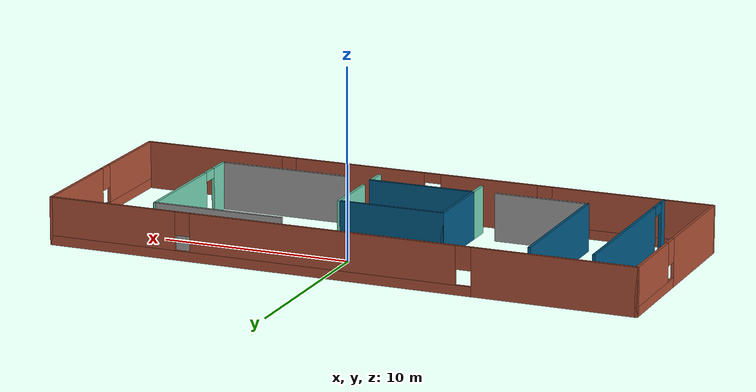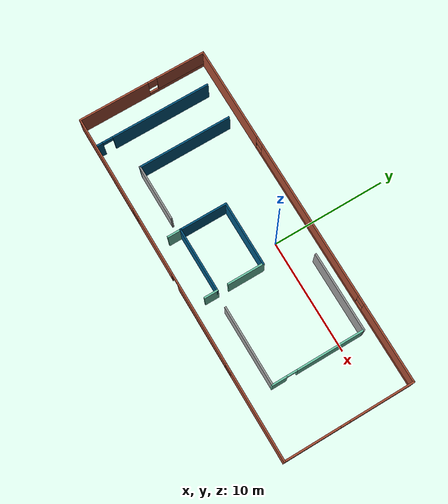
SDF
<?xml version='1.0'?>
<sdf version='1.6'>
  <model name='building'>
    <pose frame=''>-0.660301 -2.71886 0 0 -0 0</pose>
    <link name='Wall_11'>
      <pose frame=''>0 5.675 0 0 -0 0</pose>
      <visual name='Wall_11_Visual_0'>
        <pose frame=''>-11.3538 0 1.25 0 -0 0</pose>
        <geometry>
          <box>
            <size>8.54246 0.15 2.5</size>
          </box>
        </geometry>
        <material>
          <script>
            <uri>file://media/materials/scripts/gazebo.material</uri>
            <name>Gazebo/Bricks</name>
          </script>
          <ambient>1 1 1 1</ambient>
        </material>
        <meta>
          <layer>0</layer>
        </meta>
      </visual>
      <collision name='Wall_11_Collision_0'>
        <geometry>
          <box>
            <size>8.54246 0.15 2.5</size>
          </box>
        </geometry>
        <pose frame=''>-11.3538 0 1.25 0 -0 0</pose>
      </collision>
      <visual name='Wall_11_Visual_1'>
        <pose frame=''>4.27123 0 0.25 0 -0 0</pose>
        <geometry>
          <box>
            <size>22.7075 0.15 0.5</size>
          </box>
        </geometry>
        <material>
          <script>
            <uri>file://media/materials/scripts/gazebo.material</uri>
            <name>Gazebo/Bricks</name>
          </script>
          <ambient>1 1 1 1</ambient>
        </material>
        <meta>
          <layer>0</layer>
        </meta>
      </visual>
      <collision name='Wall_11_Collision_1'>
        <geometry>
          <box>
            <size>22.7075 0.15 0.5</size>
          </box>
        </geometry>
        <pose frame=''>4.27123 0 0.25 0 -0 0</pose>
      </collision>
      <visual name='Wall_11_Visual_2'>
        <pose frame=''>0.803208 0 1.5 0 -0 0</pose>
        <geometry>
          <box>
            <size>14.1715 0.15 2</size>
          </box>
        </geometry>
        <material>
          <script>
            <uri>file://media/materials/scripts/gazebo.material</uri>
            <name>Gazebo/Bricks</name>
          </script>
          <ambient>1 1 1 1</ambient>
        </material>
        <meta>
          <layer>0</layer>
        </meta>
      </visual>
      <collision name='Wall_11_Collision_2'>
        <geometry>
          <box>
            <size>14.1715 0.15 2</size>
          </box>
        </geometry>
        <pose frame=''>0.803208 0 1.5 0 -0 0</pose>
      </collision>
      <visual name='Wall_11_Visual_3'>
        <pose frame=''>12.157 0 1.5 0 -0 0</pose>
        <geometry>
          <box>
            <size>6.93605 0.15 2</size>
          </box>
        </geometry>
        <material>
          <script>
            <uri>file://media/materials/scripts/gazebo.material</uri>
            <name>Gazebo/Bricks</name>
          </script>
          <ambient>1 1 1 1</ambient>
        </material>
        <meta>
          <layer>0</layer>
        </meta>
      </visual>
      <collision name='Wall_11_Collision_3'>
        <geometry>
          <box>
            <size>6.93605 0.15 2</size>
          </box>
        </geometry>
        <pose frame=''>12.157 0 1.5 0 -0 0</pose>
      </collision>
      <visual name='Wall_11_Visual_4'>
        <pose frame=''>-6.68254 0 1.9 0 -0 0</pose>
        <geometry>
          <box>
            <size>0.8 0.15 1.2</size>
          </box>
        </geometry>
        <material>
          <script>
            <uri>file://media/materials/scripts/gazebo.material</uri>
            <name>Gazebo/Bricks</name>
          </script>
          <ambient>1 1 1 1</ambient>
        </material>
        <meta>
          <layer>0</layer>
        </meta>
      </visual>
      <collision name='Wall_11_Collision_4'>
        <geometry>
          <box>
            <size>0.8 0.15 1.2</size>
          </box>
        </geometry>
        <pose frame=''>-6.68254 0 1.9 0 -0 0</pose>
      </collision>
      <visual name='Wall_11_Visual_5'>
        <pose frame=''>8.28895 0 1.9 0 -0 0</pose>
        <geometry>
          <box>
            <size>0.8 0.15 1.2</size>
          </box>
        </geometry>
        <material>
          <script>
            <uri>file://media/materials/scripts/gazebo.material</uri>
            <name>Gazebo/Bricks</name>
          </script>
          <ambient>1 1 1 1</ambient>
        </material>
        <meta>
          <layer>0</layer>
        </meta>
      </visual>
      <collision name='Wall_11_Collision_5'>
        <geometry>
          <box>
            <size>0.8 0.15 1.2</size>
          </box>
        </geometry>
        <pose frame=''>8.28895 0 1.9 0 -0 0</pose>
      </collision>
    </link>
    <link name='Wall_12'>
      <pose frame=''>15.55 0 0 0 0 -1.5708</pose>
      <visual name='Wall_12_Visual_0'>
        <pose frame=''>-2.88672 0 1.25 0 -0 0</pose>
        <geometry>
          <box>
            <size>5.72656 0.15 2.5</size>
          </box>
        </geometry>
        <material>
          <script>
            <uri>file://media/materials/scripts/gazebo.material</uri>
            <name>Gazebo/Bricks</name>
          </script>
          <ambient>1 1 1 1</ambient>
        </material>
        <meta>
          <layer>0</layer>
        </meta>
      </visual>
      <collision name='Wall_12_Collision_0'>
        <geometry>
          <box>
            <size>5.72656 0.15 2.5</size>
          </box>
        </geometry>
        <pose frame=''>-2.88672 0 1.25 0 -0 0</pose>
      </collision>
      <visual name='Wall_12_Visual_1'>
        <pose frame=''>2.86328 0 0.25 0 -0 0</pose>
        <geometry>
          <box>
            <size>5.77344 0.15 0.5</size>
          </box>
        </geometry>
        <material>
          <script>
            <uri>file://media/materials/scripts/gazebo.material</uri>
            <name>Gazebo/Bricks</name>
          </script>
          <ambient>1 1 1 1</ambient>
        </material>
        <meta>
          <layer>0</layer>
        </meta>
      </visual>
      <collision name='Wall_12_Collision_1'>
        <geometry>
          <box>
            <size>5.77344 0.15 0.5</size>
          </box>
        </geometry>
        <pose frame=''>2.86328 0 0.25 0 -0 0</pose>
      </collision>
      <visual name='Wall_12_Visual_2'>
        <pose frame=''>3.26328 0 1.5 0 -0 0</pose>
        <geometry>
          <box>
            <size>4.97344 0.15 2</size>
          </box>
        </geometry>
        <material>
          <script>
            <uri>file://media/materials/scripts/gazebo.material</uri>
            <name>Gazebo/Bricks</name>
          </script>
          <ambient>1 1 1 1</ambient>
        </material>
        <meta>
          <layer>0</layer>
        </meta>
      </visual>
      <collision name='Wall_12_Collision_2'>
        <geometry>
          <box>
            <size>4.97344 0.15 2</size>
          </box>
        </geometry>
        <pose frame=''>3.26328 0 1.5 0 -0 0</pose>
      </collision>
      <visual name='Wall_12_Visual_3'>
        <pose frame=''>0.376562 0 1.9 0 -0 0</pose>
        <geometry>
          <box>
            <size>0.8 0.15 1.2</size>
          </box>
        </geometry>
        <material>
          <script>
            <uri>file://media/materials/scripts/gazebo.material</uri>
            <name>Gazebo/Bricks</name>
          </script>
          <ambient>1 1 1 1</ambient>
        </material>
        <meta>
          <layer>0</layer>
        </meta>
      </visual>
      <collision name='Wall_12_Collision_3'>
        <geometry>
          <box>
            <size>0.8 0.15 1.2</size>
          </box>
        </geometry>
        <pose frame=''>0.376562 0 1.9 0 -0 0</pose>
      </collision>
    </link>
    <link name='Wall_13'>
      <pose frame=''>0 -5.675 0 0 -0 3.14159</pose>
      <visual name='Wall_13_Visual_0'>
        <pose frame=''>-11.7722 0 1.25 0 -0 0</pose>
        <geometry>
          <box>
            <size>7.70561 0.15 2.5</size>
          </box>
        </geometry>
        <material>
          <script>
            <uri>file://media/materials/scripts/gazebo.material</uri>
            <name>Gazebo/Bricks</name>
          </script>
          <ambient>1 1 1 1</ambient>
        </material>
        <meta>
          <layer>0</layer>
        </meta>
      </visual>
      <collision name='Wall_13_Collision_0'>
        <geometry>
          <box>
            <size>7.70561 0.15 2.5</size>
          </box>
        </geometry>
        <pose frame=''>-11.7722 0 1.25 0 -0 0</pose>
      </collision>
      <visual name='Wall_13_Visual_1'>
        <pose frame=''>3.57682 0 1.25 0 -0 0</pose>
        <geometry>
          <box>
            <size>5.27152 0.15 2.5</size>
          </box>
        </geometry>
        <material>
          <script>
            <uri>file://media/materials/scripts/gazebo.material</uri>
            <name>Gazebo/Bricks</name>
          </script>
          <ambient>1 1 1 1</ambient>
        </material>
        <meta>
          <layer>0</layer>
        </meta>
      </visual>
      <collision name='Wall_13_Collision_1'>
        <geometry>
          <box>
            <size>5.27152 0.15 2.5</size>
          </box>
        </geometry>
        <pose frame=''>3.57682 0 1.25 0 -0 0</pose>
      </collision>
      <visual name='Wall_13_Visual_2'>
        <pose frame=''>-3.93917 0 0.25 0 -0 0</pose>
        <geometry>
          <box>
            <size>7.96045 0.15 0.5</size>
          </box>
        </geometry>
        <material>
          <script>
            <uri>file://media/materials/scripts/gazebo.material</uri>
            <name>Gazebo/Bricks</name>
          </script>
          <ambient>1 1 1 1</ambient>
        </material>
        <meta>
          <layer>0</layer>
        </meta>
      </visual>
      <collision name='Wall_13_Collision_2'>
        <geometry>
          <box>
            <size>7.96045 0.15 0.5</size>
          </box>
        </geometry>
        <pose frame=''>-3.93917 0 0.25 0 -0 0</pose>
      </collision>
      <visual name='Wall_13_Visual_3'>
        <pose frame=''>10.9188 0 0.25 0 -0 0</pose>
        <geometry>
          <box>
            <size>9.41242 0.15 0.5</size>
          </box>
        </geometry>
        <material>
          <script>
            <uri>file://media/materials/scripts/gazebo.material</uri>
            <name>Gazebo/Bricks</name>
          </script>
          <ambient>1 1 1 1</ambient>
        </material>
        <meta>
          <layer>0</layer>
        </meta>
      </visual>
      <collision name='Wall_13_Collision_3'>
        <geometry>
          <box>
            <size>9.41242 0.15 0.5</size>
          </box>
        </geometry>
        <pose frame=''>10.9188 0 0.25 0 -0 0</pose>
      </collision>
      <visual name='Wall_13_Visual_4'>
        <pose frame=''>-3.53917 0 1.5 0 -0 0</pose>
        <geometry>
          <box>
            <size>7.16045 0.15 2</size>
          </box>
        </geometry>
        <material>
          <script>
            <uri>file://media/materials/scripts/gazebo.material</uri>
            <name>Gazebo/Bricks</name>
          </script>
          <ambient>1 1 1 1</ambient>
        </material>
        <meta>
          <layer>0</layer>
        </meta>
      </visual>
      <collision name='Wall_13_Collision_4'>
        <geometry>
          <box>
            <size>7.16045 0.15 2</size>
          </box>
        </geometry>
        <pose frame=''>-3.53917 0 1.5 0 -0 0</pose>
      </collision>
      <visual name='Wall_13_Visual_5'>
        <pose frame=''>-3.53917 0 1.5 0 -0 0</pose>
        <geometry>
          <box>
            <size>7.16045 0.15 2</size>
          </box>
        </geometry>
        <material>
          <script>
            <uri>file://media/materials/scripts/gazebo.material</uri>
            <name>Gazebo/Bricks</name>
          </script>
          <ambient>1 1 1 1</ambient>
        </material>
        <meta>
          <layer>0</layer>
        </meta>
      </visual>
      <collision name='Wall_13_Collision_5'>
        <geometry>
          <box>
            <size>7.16045 0.15 2</size>
          </box>
        </geometry>
        <pose frame=''>-3.53917 0 1.5 0 -0 0</pose>
      </collision>
      <visual name='Wall_13_Visual_6'>
        <pose frame=''>11.3188 0 1.5 0 -0 0</pose>
        <geometry>
          <box>
            <size>8.61242 0.15 2</size>
          </box>
        </geometry>
        <material>
          <script>
            <uri>file://media/materials/scripts/gazebo.material</uri>
            <name>Gazebo/Bricks</name>
          </script>
          <ambient>1 1 1 1</ambient>
        </material>
        <meta>
          <layer>0</layer>
        </meta>
      </visual>
      <collision name='Wall_13_Collision_6'>
        <geometry>
          <box>
            <size>8.61242 0.15 2</size>
          </box>
        </geometry>
        <pose frame=''>11.3188 0 1.5 0 -0 0</pose>
      </collision>
      <visual name='Wall_13_Visual_7'>
        <pose frame=''>-7.51939 0 1.9 0 -0 0</pose>
        <geometry>
          <box>
            <size>0.8 0.15 1.2</size>
          </box>
        </geometry>
        <material>
          <script>
            <uri>file://media/materials/scripts/gazebo.material</uri>
            <name>Gazebo/Bricks</name>
          </script>
          <ambient>1 1 1 1</ambient>
        </material>
        <meta>
          <layer>0</layer>
        </meta>
      </visual>
      <collision name='Wall_13_Collision_7'>
        <geometry>
          <box>
            <size>0.8 0.15 1.2</size>
          </box>
        </geometry>
        <pose frame=''>-7.51939 0 1.9 0 -0 0</pose>
      </collision>
      <visual name='Wall_13_Visual_8'>
        <pose frame=''>6.61258 0 1.9 0 -0 0</pose>
        <geometry>
          <box>
            <size>0.8 0.15 1.2</size>
          </box>
        </geometry>
        <material>
          <script>
            <uri>file://media/materials/scripts/gazebo.material</uri>
            <name>Gazebo/Bricks</name>
          </script>
          <ambient>1 1 1 1</ambient>
        </material>
        <meta>
          <layer>0</layer>
        </meta>
      </visual>
      <collision name='Wall_13_Collision_8'>
        <geometry>
          <box>
            <size>0.8 0.15 1.2</size>
          </box>
        </geometry>
        <pose frame=''>6.61258 0 1.9 0 -0 0</pose>
      </collision>
      <visual name='Wall_13_Visual_9'>
        <pose frame=''>0.491056 0 2.25 0 -0 0</pose>
        <geometry>
          <box>
            <size>0.9 0.15 0.5</size>
          </box>
        </geometry>
        <material>
          <script>
            <uri>file://media/materials/scripts/gazebo.material</uri>
            <name>Gazebo/Bricks</name>
          </script>
          <ambient>1 1 1 1</ambient>
        </material>
        <meta>
          <layer>0</layer>
        </meta>
      </visual>
      <collision name='Wall_13_Collision_9'>
        <geometry>
          <box>
            <size>0.9 0.15 0.5</size>
          </box>
        </geometry>
        <pose frame=''>0.491056 0 2.25 0 -0 0</pose>
      </collision>
      <visual name='Wall_13_Visual_10'>
        <pose frame=''>0.491056 0 2.25 0 -0 0</pose>
        <geometry>
          <box>
            <size>0.9 0.15 0.5</size>
          </box>
        </geometry>
        <material>
          <script>
            <uri>file://media/materials/scripts/gazebo.material</uri>
            <name>Gazebo/Bricks</name>
          </script>
          <ambient>1 1 1 1</ambient>
        </material>
        <meta>
          <layer>0</layer>
        </meta>
      </visual>
      <collision name='Wall_13_Collision_10'>
        <geometry>
          <box>
            <size>0.9 0.15 0.5</size>
          </box>
        </geometry>
        <pose frame=''>0.491056 0 2.25 0 -0 0</pose>
      </collision>
    </link>
    <link name='Wall_14'>
      <pose frame=''>-15.55 0 0 0 -0 1.5708</pose>
      <visual name='Wall_14_Visual_0'>
        <pose frame=''>-2.61615 0 1.25 0 -0 0</pose>
        <geometry>
          <box>
            <size>6.2677 0.15 2.5</size>
          </box>
        </geometry>
        <material>
          <script>
            <uri>file://media/materials/scripts/gazebo.material</uri>
            <name>Gazebo/Bricks</name>
          </script>
          <ambient>1 1 1 1</ambient>
        </material>
        <meta>
          <layer>0</layer>
        </meta>
      </visual>
      <collision name='Wall_14_Collision_0'>
        <geometry>
          <box>
            <size>6.2677 0.15 2.5</size>
          </box>
        </geometry>
        <pose frame=''>-2.61615 0 1.25 0 -0 0</pose>
      </collision>
      <visual name='Wall_14_Visual_1'>
        <pose frame=''>3.13385 0 0.25 0 -0 0</pose>
        <geometry>
          <box>
            <size>5.2323 0.15 0.5</size>
          </box>
        </geometry>
        <material>
          <script>
            <uri>file://media/materials/scripts/gazebo.material</uri>
            <name>Gazebo/Bricks</name>
          </script>
          <ambient>1 1 1 1</ambient>
        </material>
        <meta>
          <layer>0</layer>
        </meta>
      </visual>
      <collision name='Wall_14_Collision_1'>
        <geometry>
          <box>
            <size>5.2323 0.15 0.5</size>
          </box>
        </geometry>
        <pose frame=''>3.13385 0 0.25 0 -0 0</pose>
      </collision>
      <visual name='Wall_14_Visual_2'>
        <pose frame=''>3.53385 0 1.5 0 -0 0</pose>
        <geometry>
          <box>
            <size>4.4323 0.15 2</size>
          </box>
        </geometry>
        <material>
          <script>
            <uri>file://media/materials/scripts/gazebo.material</uri>
            <name>Gazebo/Bricks</name>
          </script>
          <ambient>1 1 1 1</ambient>
        </material>
        <meta>
          <layer>0</layer>
        </meta>
      </visual>
      <collision name='Wall_14_Collision_2'>
        <geometry>
          <box>
            <size>4.4323 0.15 2</size>
          </box>
        </geometry>
        <pose frame=''>3.53385 0 1.5 0 -0 0</pose>
      </collision>
      <visual name='Wall_14_Visual_3'>
        <pose frame=''>0.917703 0 1.9 0 -0 0</pose>
        <geometry>
          <box>
            <size>0.8 0.15 1.2</size>
          </box>
        </geometry>
        <material>
          <script>
            <uri>file://media/materials/scripts/gazebo.material</uri>
            <name>Gazebo/Bricks</name>
          </script>
          <ambient>1 1 1 1</ambient>
        </material>
        <meta>
          <layer>0</layer>
        </meta>
      </visual>
      <collision name='Wall_14_Collision_3'>
        <geometry>
          <box>
            <size>0.8 0.15 1.2</size>
          </box>
        </geometry>
        <pose frame=''>0.917703 0 1.9 0 -0 0</pose>
      </collision>
    </link>
    <link name='Wall_16'>
      <pose frame=''>-12.9615 -0.529344 0 0 0 -1.5708</pose>
      <visual name='Wall_16_Visual_0'>
        <pose frame=''>-0.738849 0 1.25 0 -0 0</pose>
        <geometry>
          <box>
            <size>8.7723 0.15 2.5</size>
          </box>
        </geometry>
        <material>
          <script>
            <uri>file://media/materials/scripts/gazebo.material</uri>
            <name>Gazebo/Grey</name>
          </script>
          <ambient>0 0.333333 0.498039 1</ambient>
        </material>
        <meta>
          <layer>0</layer>
        </meta>
      </visual>
      <collision name='Wall_16_Collision_0'>
        <geometry>
          <box>
            <size>8.7723 0.15 2.5</size>
          </box>
        </geometry>
        <pose frame=''>-0.738849 0 1.25 0 -0 0</pose>
      </collision>
      <visual name='Wall_16_Visual_1'>
        <pose frame=''>4.83615 0 1.25 0 -0 0</pose>
        <geometry>
          <box>
            <size>0.577698 0.15 2.5</size>
          </box>
        </geometry>
        <material>
          <script>
            <uri>file://media/materials/scripts/gazebo.material</uri>
            <name>Gazebo/Grey</name>
          </script>
          <ambient>0 0.333333 0.498039 1</ambient>
        </material>
        <meta>
          <layer>0</layer>
        </meta>
      </visual>
      <collision name='Wall_16_Collision_1'>
        <geometry>
          <box>
            <size>0.577698 0.15 2.5</size>
          </box>
        </geometry>
        <pose frame=''>4.83615 0 1.25 0 -0 0</pose>
      </collision>
      <visual name='Wall_16_Visual_2'>
        <pose frame=''>4.0973 0 2.25 0 -0 0</pose>
        <geometry>
          <box>
            <size>0.9 0.15 0.5</size>
          </box>
        </geometry>
        <material>
          <script>
            <uri>file://media/materials/scripts/gazebo.material</uri>
            <name>Gazebo/Grey</name>
          </script>
          <ambient>0 0.333333 0.498039 1</ambient>
        </material>
        <meta>
          <layer>0</layer>
        </meta>
      </visual>
      <collision name='Wall_16_Collision_2'>
        <geometry>
          <box>
            <size>0.9 0.15 0.5</size>
          </box>
        </geometry>
        <pose frame=''>4.0973 0 2.25 0 -0 0</pose>
      </collision>
    </link>
    <link name='Wall_18'>
      <collision name='Wall_18_Collision'>
        <geometry>
          <box>
            <size>1.25 0.15 2.5</size>
          </box>
        </geometry>
        <pose frame=''>0 0 1.25 0 -0 0</pose>
      </collision>
      <visual name='Wall_18_Visual'>
        <pose frame=''>0 0 1.25 0 -0 0</pose>
        <geometry>
          <box>
            <size>1.25 0.15 2.5</size>
          </box>
        </geometry>
        <material>
          <script>
            <uri>file://media/materials/scripts/gazebo.material</uri>
            <name>Gazebo/Grey</name>
          </script>
          <ambient>0.435294 0.796078 0.67451 1</ambient>
        </material>
        <meta>
          <layer>0</layer>
        </meta>
      </visual>
      <pose frame=''>-3.62178 -3.91924 0 0 -0 1.5708</pose>
    </link>
    <link name='Wall_19'>
      <collision name='Wall_19_Collision'>
        <geometry>
          <box>
            <size>5.75 0.15 2.5</size>
          </box>
        </geometry>
        <pose frame=''>0 0 1.25 0 -0 0</pose>
      </collision>
      <visual name='Wall_19_Visual'>
        <pose frame=''>0 0 1.25 0 -0 0</pose>
        <geometry>
          <box>
            <size>5.75 0.15 2.5</size>
          </box>
        </geometry>
        <material>
          <script>
            <uri>file://media/materials/scripts/gazebo.material</uri>
            <name>Gazebo/Grey</name>
          </script>
          <ambient>0 0.333333 0.498039 1</ambient>
        </material>
        <meta>
          <layer>0</layer>
        </meta>
      </visual>
      <pose frame=''>-0.821778 -3.36924 0 0 -0 0</pose>
    </link>
    <link name='Wall_20'>
      <collision name='Wall_20_Collision'>
        <geometry>
          <box>
            <size>1.25 0.15 2.5</size>
          </box>
        </geometry>
        <pose frame=''>0 0 1.25 0 -0 0</pose>
      </collision>
      <visual name='Wall_20_Visual'>
        <pose frame=''>0 0 1.25 0 -0 0</pose>
        <geometry>
          <box>
            <size>1.25 0.15 2.5</size>
          </box>
        </geometry>
        <material>
          <script>
            <uri>file://media/materials/scripts/gazebo.material</uri>
            <name>Gazebo/Grey</name>
          </script>
          <ambient>0.435294 0.796078 0.67451 1</ambient>
        </material>
        <meta>
          <layer>0</layer>
        </meta>
      </visual>
      <pose frame=''>1.97822 -3.91924 0 0 0 -1.5708</pose>
    </link>
    <link name='Wall_22'>
      <collision name='Wall_22_Collision'>
        <geometry>
          <box>
            <size>8.25 0.15 2.5</size>
          </box>
        </geometry>
        <pose frame=''>0 0 1.25 0 -0 0</pose>
      </collision>
      <visual name='Wall_22_Visual'>
        <pose frame=''>0 0 1.25 0 -0 0</pose>
        <geometry>
          <box>
            <size>8.25 0.15 2.5</size>
          </box>
        </geometry>
        <material>
          <script>
            <uri>file://media/materials/scripts/gazebo.material</uri>
            <name>Gazebo/Grey</name>
          </script>
          <ambient>0 0.333333 0.498039 1</ambient>
        </material>
        <meta>
          <layer>0</layer>
        </meta>
      </visual>
      <pose frame=''>-9.67334 0.523126 0 0 0 -1.5708</pose>
    </link>
    <link name='Wall_23'>
      <collision name='Wall_23_Collision'>
        <geometry>
          <box>
            <size>5 0.15 2.5</size>
          </box>
        </geometry>
        <pose frame=''>0 0 1.25 0 -0 0</pose>
      </collision>
      <visual name='Wall_23_Visual'>
        <pose frame=''>0 0 1.25 0 -0 0</pose>
        <geometry>
          <box>
            <size>5 0.15 2.5</size>
          </box>
        </geometry>
        <material>
          <script>
            <uri>file://media/materials/scripts/gazebo.material</uri>
            <name>Gazebo/Grey</name>
          </script>
          <ambient>0 0 0 1</ambient>
        </material>
        <meta>
          <layer>0</layer>
        </meta>
      </visual>
      <pose frame=''>-7.24834 -3.52687 0 0 -0 0</pose>
    </link>
    <link name='Wall_26'>
      <collision name='Wall_26_Collision'>
        <geometry>
          <box>
            <size>7 0.15 2.5</size>
          </box>
        </geometry>
        <pose frame=''>0 0 1.25 0 -0 0</pose>
      </collision>
      <visual name='Wall_26_Visual'>
        <pose frame=''>0 0 1.25 0 -0 0</pose>
        <geometry>
          <box>
            <size>7 0.15 2.5</size>
          </box>
        </geometry>
        <material>
          <script>
            <uri>file://media/materials/scripts/gazebo.material</uri>
            <name>Gazebo/Grey</name>
          </script>
          <ambient>0 0 0 1</ambient>
        </material>
        <meta>
          <layer>0</layer>
        </meta>
      </visual>
      <pose frame=''>6.8867 -3.50728 0 0 -0 0</pose>
    </link>
    <link name='Wall_27'>
      <pose frame=''>10.3117 0.542717 0 0 -0 1.5708</pose>
      <visual name='Wall_27_Visual_0'>
        <pose frame=''>-3.45549 0 1.25 0 -0 0</pose>
        <geometry>
          <box>
            <size>1.33903 0.15 2.5</size>
          </box>
        </geometry>
        <material>
          <script>
            <uri>file://media/materials/scripts/gazebo.material</uri>
            <name>Gazebo/Grey</name>
          </script>
          <ambient>0.435294 0.796078 0.67451 1</ambient>
        </material>
        <meta>
          <layer>0</layer>
        </meta>
      </visual>
      <collision name='Wall_27_Collision_0'>
        <geometry>
          <box>
            <size>1.33903 0.15 2.5</size>
          </box>
        </geometry>
        <pose frame=''>-3.45549 0 1.25 0 -0 0</pose>
      </collision>
      <visual name='Wall_27_Visual_1'>
        <pose frame=''>1.11951 0 1.25 0 -0 0</pose>
        <geometry>
          <box>
            <size>6.01097 0.15 2.5</size>
          </box>
        </geometry>
        <material>
          <script>
            <uri>file://media/materials/scripts/gazebo.material</uri>
            <name>Gazebo/Grey</name>
          </script>
          <ambient>0.435294 0.796078 0.67451 1</ambient>
        </material>
        <meta>
          <layer>0</layer>
        </meta>
      </visual>
      <collision name='Wall_27_Collision_1'>
        <geometry>
          <box>
            <size>6.01097 0.15 2.5</size>
          </box>
        </geometry>
        <pose frame=''>1.11951 0 1.25 0 -0 0</pose>
      </collision>
      <visual name='Wall_27_Visual_2'>
        <pose frame=''>-2.33597 0 2.25 0 -0 0</pose>
        <geometry>
          <box>
            <size>0.9 0.15 0.5</size>
          </box>
        </geometry>
        <material>
          <script>
            <uri>file://media/materials/scripts/gazebo.material</uri>
            <name>Gazebo/Grey</name>
          </script>
          <ambient>0.435294 0.796078 0.67451 1</ambient>
        </material>
        <meta>
          <layer>0</layer>
        </meta>
      </visual>
      <collision name='Wall_27_Collision_2'>
        <geometry>
          <box>
            <size>0.9 0.15 0.5</size>
          </box>
        </geometry>
        <pose frame=''>-2.33597 0 2.25 0 -0 0</pose>
      </collision>
    </link>
    <link name='Wall_29'>
      <collision name='Wall_29_Collision'>
        <geometry>
          <box>
            <size>4.25 0.15 2.5</size>
          </box>
        </geometry>
        <pose frame=''>0 0 1.25 0 -0 0</pose>
      </collision>
      <visual name='Wall_29_Visual'>
        <pose frame=''>0 0 1.25 0 -0 0</pose>
        <geometry>
          <box>
            <size>4.25 0.15 2.5</size>
          </box>
        </geometry>
        <material>
          <script>
            <uri>file://media/materials/scripts/gazebo.material</uri>
            <name>Gazebo/Grey</name>
          </script>
          <ambient>0 0.333333 0.498039 1</ambient>
        </material>
        <meta>
          <layer>0</layer>
        </meta>
      </visual>
      <pose frame=''>-3.62178 -1.31924 0 0 -0 1.5708</pose>
    </link>
    <link name='Wall_30'>
      <collision name='Wall_30_Collision'>
        <geometry>
          <box>
            <size>5.75 0.15 2.5</size>
          </box>
        </geometry>
        <pose frame=''>0 0 1.25 0 -0 0</pose>
      </collision>
      <visual name='Wall_30_Visual'>
        <pose frame=''>0 0 1.25 0 -0 0</pose>
        <geometry>
          <box>
            <size>5.75 0.15 2.5</size>
          </box>
        </geometry>
        <material>
          <script>
            <uri>file://media/materials/scripts/gazebo.material</uri>
            <name>Gazebo/Grey</name>
          </script>
          <ambient>0 0.333333 0.498039 1</ambient>
        </material>
        <meta>
          <layer>0</layer>
        </meta>
      </visual>
      <pose frame=''>-0.821778 0.730764 0 0 -0 0</pose>
    </link>
    <link name='Wall_31'>
      <collision name='Wall_31_Collision'>
        <geometry>
          <box>
            <size>3.25 0.15 2.5</size>
          </box>
        </geometry>
        <pose frame=''>0 0 1.25 0 -0 0</pose>
      </collision>
      <visual name='Wall_31_Visual'>
        <pose frame=''>0 0 1.25 0 -0 0</pose>
        <geometry>
          <box>
            <size>3.25 0.15 2.5</size>
          </box>
        </geometry>
        <material>
          <script>
            <uri>file://media/materials/scripts/gazebo.material</uri>
            <name>Gazebo/Grey</name>
          </script>
          <ambient>0.435294 0.796078 0.67451 1</ambient>
        </material>
        <meta>
          <layer>0</layer>
        </meta>
      </visual>
      <pose frame=''>1.97822 -0.819236 0 0 0 -1.5708</pose>
    </link>
    <link name='Wall_33'>
      <collision name='Wall_33_Collision'>
        <geometry>
          <box>
            <size>7 0.15 2.5</size>
          </box>
        </geometry>
        <pose frame=''>0 0 1.25 0 -0 0</pose>
      </collision>
      <visual name='Wall_33_Visual'>
        <pose frame=''>0 0 1.25 0 -0 0</pose>
        <geometry>
          <box>
            <size>7 0.15 2.5</size>
          </box>
        </geometry>
        <material>
          <script>
            <uri>file://media/materials/scripts/gazebo.material</uri>
            <name>Gazebo/Grey</name>
          </script>
          <ambient>0 0 0 1</ambient>
        </material>
        <meta>
          <layer>0</layer>
        </meta>
      </visual>
      <pose frame=''>6.8867 4.59272 0 0 -0 3.14159</pose>
    </link>
    <static>1</static>
  </model>
</sdf>
